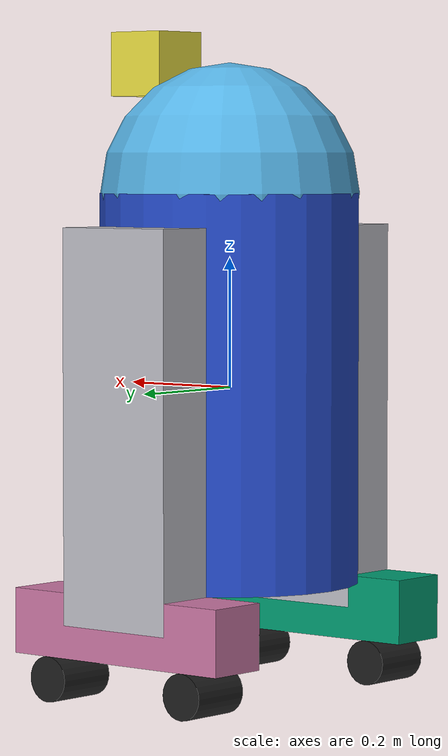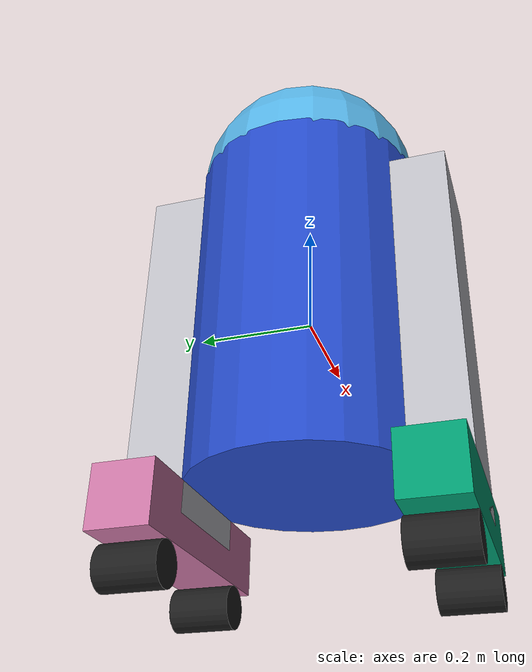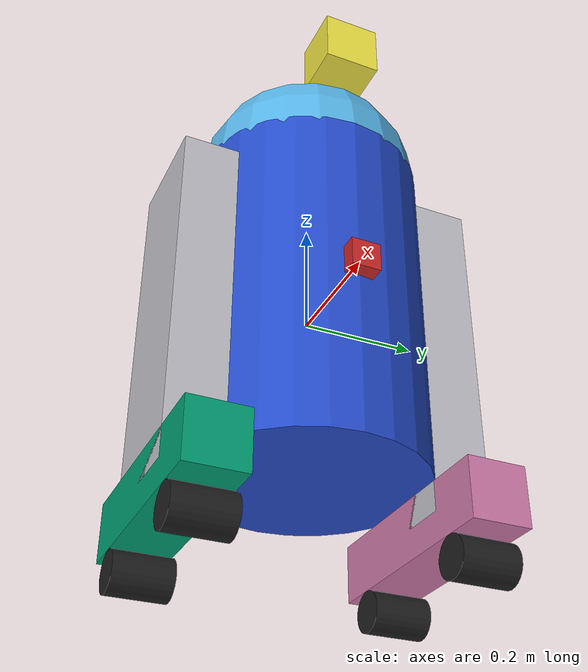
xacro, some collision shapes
<?xml version="1.0"?>
<robot name="r2" xmlns:xacro="http://ros.org/wiki/xacro">
  <xacro:include filename="$(find my_robot)/urdf/my_robot.gazebo"/>

  <xacro:property name="width" value="0.2" />
  <xacro:property name="leglen" value="0.6" />
  <xacro:property name="polelen" value="0.2" />
  <xacro:property name="bodylen" value="0.6" />
  <xacro:property name="baselen" value="0.4" />
  <xacro:property name="wheeldiam" value="0.07" />
  <xacro:property name="pi" value="3.1415" />

  <xacro:macro name="default_inertial" params="mass">
    <inertial>
      <mass value="${mass}" />
      <inertia ixx="1.0" ixy="0.0" ixz="0.0" iyy="1.0" iyz="0.0" izz="1.0" />
    </inertial>
  </xacro:macro>

  <link name="base">
    <visual>
      <geometry>
        <cylinder radius="0.2" length="0.6"/>
      </geometry>
    </visual>
    <collision>
      <geometry>
        <cylinder radius="0.2" length="0.6"/>
      </geometry>
    </collision>
    <inertial>
      <mass value="10"/>
      <inertia
          ixx="1.0" ixy="0" ixz="0"
          iyy="1.0" iyz="0"
          izz="1.0"/>
    </inertial>
  </link>

  <xacro:macro name="wheel" params="prefix suffix reflect">

    <link name="${prefix}_${suffix}_wheel">
      <visual>
        <origin xyz="0 0 0" rpy="${pi/2} 0 0" />
        <geometry>
          <cylinder radius="${wheeldiam/2}" length="0.1"/>
        </geometry>
      </visual>
      <collision>
        <origin xyz="0 0 0" rpy="${pi/2} 0 0" />
        <geometry>
          <cylinder radius="${wheeldiam/2}" length="0.1"/>
        </geometry>
      </collision>
      <xacro:default_inertial mass="1"/>
    </link>
    <joint name="${prefix}_${suffix}_wheel_joint" type="continuous">
      <axis xyz="0 1 0" rpy="0 0 0" />
      <parent link="${prefix}_base"/>
      <child link="${prefix}_${suffix}_wheel"/>
      <origin xyz="${baselen*reflect/3} 0 -${wheeldiam/2+.05}" rpy="0 0 0"/>
    </joint>

  </xacro:macro>

  <xacro:macro name="leg" params="prefix reflect">
    <link name="${prefix}_leg">
      <visual>
        <geometry>
          <box size="${leglen} 0.1 0.2"/>
        </geometry>
        <origin xyz="0 0 -${leglen/2}" rpy="0 ${pi/2} 0"/>
      </visual>
      <collision>
        <geometry>
          <box size="${leglen} 0.1 0.2"/>
        </geometry>
        <origin xyz="0 0 -${leglen/2}" rpy="0 ${pi/2} 0"/>
      </collision>
      <xacro:default_inertial mass="10"/>
    </link>

    <joint name="base_to_${prefix}_leg" type="fixed">
      <parent link="base"/>
      <child link="${prefix}_leg"/>
      <origin xyz="0 ${reflect*(width+.02)} 0.25" />
    </joint>

    <link name="${prefix}_base">
      <visual>
        <geometry>
          <box size="${baselen} 0.1 0.1"/>
        </geometry>
      </visual>
      <collision>
        <geometry>
          <box size="${baselen} 0.1 0.1"/>
        </geometry>
      </collision>
      <xacro:default_inertial mass="10"/>
    </link>

    <joint name="${prefix}_base_joint" type="fixed">
      <parent link="${prefix}_leg"/>
      <child link="${prefix}_base"/>
      <origin xyz="0 0 ${-leglen}" />
    </joint>
    <xacro:wheel prefix="${prefix}" suffix="front" reflect="1"/>
    <xacro:wheel prefix="${prefix}" suffix="back" reflect="-1"/>
  </xacro:macro>
  <xacro:leg prefix="right" reflect="-1" />
  <xacro:leg prefix="left" reflect="1" />

  <link name="head">
    <visual>
      <geometry>
        <sphere radius="0.2"/>
      </geometry>
    </visual>
    <collision>
      <geometry>
        <sphere radius="0.2"/>
      </geometry>
    </collision>
    <inertial>
      <mass value="2"/>
      <inertia
          ixx="1.0" ixy="0" ixz="0"
          iyy="1.0" iyz="0"
          izz="1.0"
      />
    </inertial>
  </link>

  <joint name="head_swivel" type="fixed">
    <parent link="base"/>
    <child link="head"/>
    <axis xyz="0 0 1"/>
    <origin xyz="0 0 0.3"/>
  </joint>

<!-- Sensors -->
  <link name="camera">
    <inertial>
      <mass value="0.1"/>
      <origin xyz="0 0 0" rpy="0 0 0"/>
      <box_inertia m="0.1" x="0.05" y="0.05" z="0.05"/>
      <inertia
          ixx="1e-6" ixy="0" ixz="0"
          iyy="1e-6" iyz="0"
          izz="1e-6"
      />
    </inertial>

    <visual name='camera_visual'>
      <origin xyz="0 0 0" rpy="0 0 0"/>
      <geometry>
        <box size="0.05 0.05 0.05" />
      </geometry>
    </visual>

    <collision name='camera_collision'>
      <origin xyz="0 0 0" rpy="0 0 0"/>
      <geometry>
        <box size="0.05 0.05 0.05"/>
      </geometry>
    </collision>
  </link>

  <joint type="fixed" name="camera_joint">
    <origin xyz="0.2 0 0" rpy="0 0 0"/>
    <child link="camera"/>
    <parent link="base"/>
    <axis xyz="0 1 0"/>
  </joint>

  <link name="hokuyo">
    <inertial>
      <mass value="1e-5"/>
      <origin xyz="0 0 0" rpy="0 0 0"/>
      <inertia
          ixx="1e-6" ixy="0" ixz="0"
          iyy="1e-6" iyz="0"
          izz="1e-6"
      />
    </inertial>

    <visual name='hokuyo_visual'>
      <origin xyz="0 0 0" rpy="0 0 0"/>
      <geometry>
        <mesh filename="package://my_robot/meshes/hokuyo.dae"/>
      </geometry>
      <origin xyz="-0.04 0 0"/>
    </visual>

    <collision name='hokuyo_collision'>
      <origin xyz="0 0 0" rpy=" 0 0 0"/>
      <geometry>
        <box size="0.1 0.1 0.1"/>
      </geometry>
    </collision>
  </link>

  <joint type="fixed" name="hokuyo_joint">
    <origin xyz="0.15 0 .5" rpy="0 0 0"/>
    <child link="hokuyo"/>
    <parent link="base"/>
    <axis xyz="1 0 0"/>
  </joint>

  <gazebo reference="camera">
  <material>Gazebo/Red</material>
  </gazebo>

  <gazebo reference="base">
  <material>Gazebo/Blue</material>
  </gazebo>

  <gazebo reference="right_leg">
  <material>Gazebo/Silver</material>
  </gazebo>

  <gazebo reference="left_leg">
  <material>Gazebo/Silver</material>
  </gazebo>

  <gazebo reference="left_back_wheel">
  <material>Gazebo/Black</material>
  </gazebo>

  <gazebo reference="left_front_wheel">
  <material>Gazebo/Black</material>
  </gazebo>

  <gazebo reference="right_back_wheel">
  <material>Gazebo/Black</material>
  </gazebo>

  <gazebo reference="right_front_wheel">
  <material>Gazebo/Black</material>
  </gazebo>

</robot>
